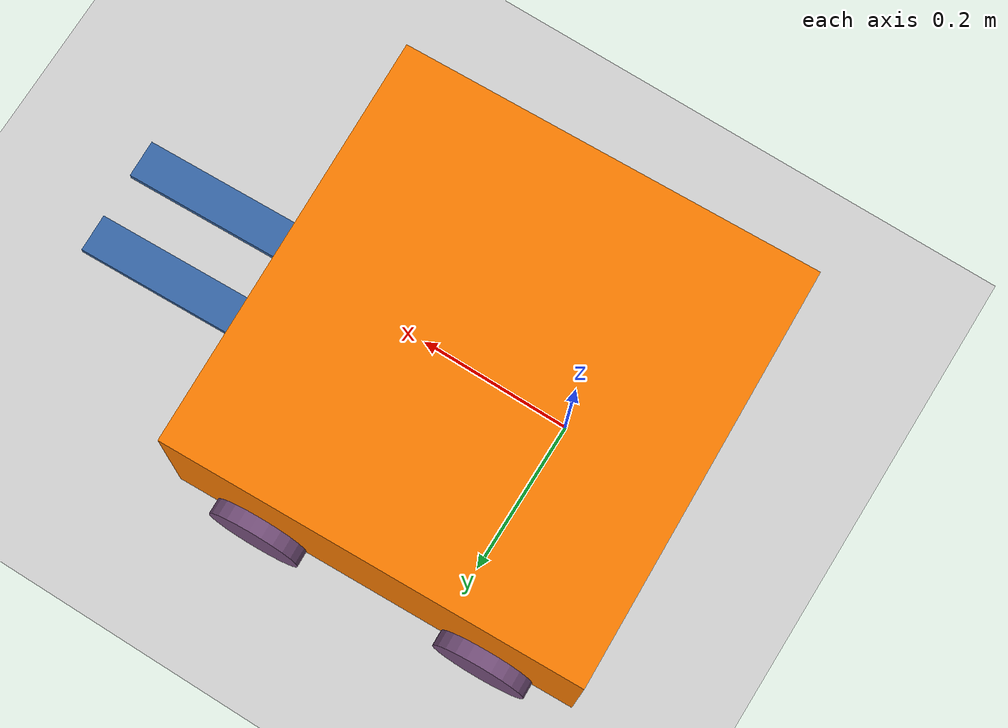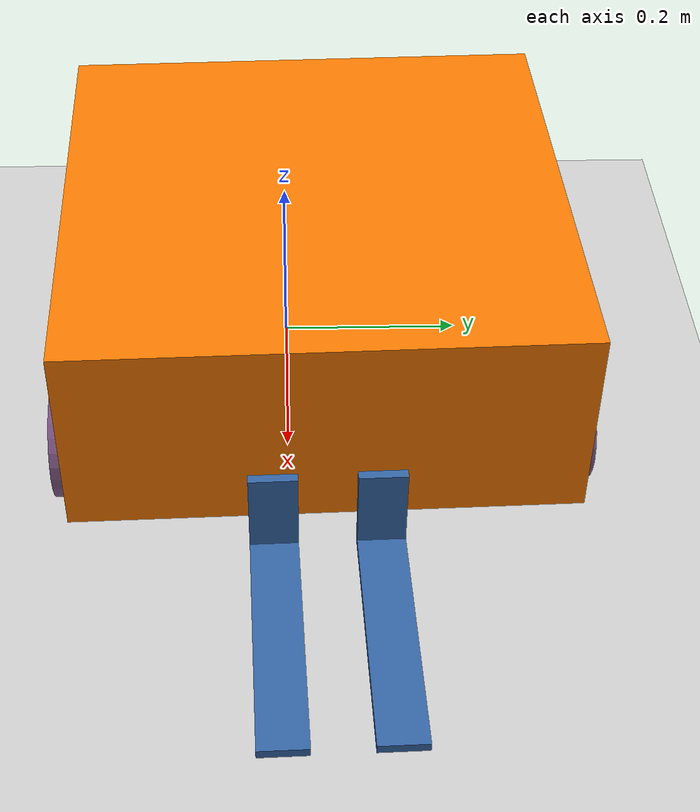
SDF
<sdf version="1.7">
 <world name="default">
  <model name="ground_plane">
   <static>1</static>
   <link name="link">
    <collision name="collision">
     <geometry><plane><normal>0 0 1</normal><size>100 100</size></plane></geometry>
     <surface>
      <contact><collide_bitmask>65535</collide_bitmask></contact>
      <friction><ode><mu>100</mu><mu2>50</mu2></ode></friction>
     </surface>
    </collision>
    <visual name="visual">
     <cast_shadows>0</cast_shadows>
     <geometry><plane><normal>0 0 1</normal><size>100 100</size></plane></geometry>
     <material>
      <script><uri>file://media/materials/scripts/gazebo.material</uri><name>Gazebo/Grey</name></script>
     </material>
    </visual>
   </link>
  </model>
  <model name="forklift_depthtest">
   <link name="camera_seg_frame">
    <pose>0.24944 0.107014 -0.322656 0 -0 0</pose>
    <inertial>
     <inertia><ixx>1</ixx><ixy>0</ixy><ixz>0</ixz><iyy>1</iyy><iyz>0</iyz><izz>1</izz></inertia>
     <mass>1</mass>
    </inertial>
   </link>
   <link name="camera_depth_frame">
    <pose>0.24944 0.107014 -0.322656 0 -0 0</pose>
    <inertial>
     <inertia><ixx>1</ixx><ixy>0</ixy><ixz>0</ixz><iyy>1</iyy><iyz>0</iyz><izz>1</izz></inertia>
     <mass>1</mass>
    </inertial>
   </link>
   <link name="camera_link">
    <pose>0.24944 0.107014 -0.322656 0 -0 0</pose>
    <sensor name="depth_camera" type="camera">
     <always_on>1</always_on>
     <visualize>0</visualize>
     <update_rate>5</update_rate>
     <camera name="camera">
      <horizontal_fov>1.02974</horizontal_fov>
      <image><width>640</width><height>480</height><format>R8G8B8</format></image>
      <clip><near>0.02</near><far>10</far></clip>
      <noise><type>gaussian</type><mean>0</mean><stddev>0.007</stddev></noise>
     </camera>
     <plugin name="depth_camera_controller" filename="libgazebo_ros_camera.so">
      <camera_name>depth_camera</camera_name>
      <frame_name>camera_depth_frame</frame_name>
      <hack_baseline>0</hack_baseline>
      <min_depth>0.001</min_depth>
     </plugin>
    </sensor>
    <inertial>
     <inertia><ixx>1</ixx><ixy>0</ixy><ixz>0</ixz><iyy>1</iyy><iyz>0</iyz><izz>1</izz></inertia>
     <mass>1</mass>
    </inertial>
    <visual name="camera_visual">
     <pose>-0.005 0 0 0 -0 0</pose>
     <geometry><box><size>0.015 0.08 0.022</size></box></geometry>
     <material>
      <ambient>0 0 0 1</ambient>
      <diffuse>0 0 0 1</diffuse>
      <specular>0 0 0 1</specular>
      <emissive>0 0 0 1</emissive>
      <shader type="pixel"><normal_map>__default__</normal_map></shader>
      <script><name>ModelPreview_3::camera_link::camera_visual_MATERIAL_</name><uri>__default__</uri></script>
     </material>
     <transparency>1</transparency>
    </visual>
   </link>
   <link name="link_0">
    <inertial>
     <mass>4</mass>
     <inertia>
      <ixx>0.107355</ixx>
      <ixy>0</ixy>
      <ixz>0</ixz>
      <iyy>0.107355</iyy>
      <iyz>0</iyz>
      <izz>0.18375</izz>
     </inertia>
    </inertial>
    <pose>-0.00556 0.107014 -0.215106 0 -0 0</pose>
    <visual name="visual">
     <geometry><box><size>0.525 0.525 0.2155</size></box></geometry>
     <material>
      <lighting>1</lighting>
      <script><uri>file://media/materials/scripts/gazebo.material</uri><name>Gazebo/Grey</name></script>
      <shader type="pixel"><normal_map>__default__</normal_map></shader>
      <ambient>0.961 0.475 0 1</ambient>
      <diffuse>0.7 0.7 0.7 1</diffuse>
      <specular>0.01 0.01 0.01 1</specular>
      <emissive>0 0 0 1</emissive>
     </material>
    </visual>
    <collision name="collision">
     <geometry><box><size>0.525 0.525 0.2155</size></box></geometry>
     <surface>
      <friction>
       <ode><mu>1</mu><mu2>1</mu2><fdir1>0 0 0</fdir1><slip1>0</slip1><slip2>0</slip2></ode>
       <torsional>
        <coefficient>1</coefficient>
        <patch_radius>0</patch_radius>
        <surface_radius>0</surface_radius>
        <use_patch_radius>1</use_patch_radius>
        <ode><slip>0</slip></ode>
       </torsional>
      </friction>
      <bounce><restitution_coefficient>0</restitution_coefficient><threshold>1e+06</threshold></bounce>
      <contact>
       <collide_without_contact>0</collide_without_contact>
       <collide_without_contact_bitmask>1</collide_without_contact_bitmask>
       <collide_bitmask>1</collide_bitmask>
       <ode>
        <soft_cfm>0</soft_cfm>
        <soft_erp>0.2</soft_erp>
        <kp>1e+13</kp>
        <kd>1</kd>
        <max_vel>0.01</max_vel>
        <min_depth>0</min_depth>
       </ode>
       <bullet>
        <split_impulse>1</split_impulse>
        <split_impulse_penetration_threshold>-0.01</split_impulse_penetration_threshold>
        <soft_cfm>0</soft_cfm>
        <soft_erp>0.2</soft_erp>
        <kp>1e+13</kp>
        <kd>1</kd>
       </bullet>
      </contact>
     </surface>
    </collision>
   </link>
   <link name="link_2">
    <inertial>
     <mass>0.1</mass>
     <inertia>
      <ixx>0.00010417</ixx>
      <ixy>0</ixy>
      <ixz>0</ixz>
      <iyy>8.417e-05</iyy>
      <iyz>0</iyz>
      <izz>2.167e-05</izz>
     </inertia>
    </inertial>
    <pose>0.261939 0.052014 -0.315356 0 -0 0</pose>
    <visual name="visual">
     <geometry><box><size>0.01 0.05 0.1</size></box></geometry>
     <material>
      <lighting>1</lighting>
      <script><uri>file://media/materials/scripts/gazebo.material</uri><name>Gazebo/Grey</name></script>
      <shader type="pixel"><normal_map>__default__</normal_map></shader>
      <ambient>0.204 0.396 0.643 1</ambient>
      <diffuse>0.7 0.7 0.7 1</diffuse>
      <specular>0.01 0.01 0.01 1</specular>
      <emissive>0 0 0 1</emissive>
     </material>
    </visual>
    <collision name="collision">
     <geometry><box><size>0.01 0.05 0.1</size></box></geometry>
     <surface>
      <friction>
       <ode><mu>1</mu><mu2>1</mu2><fdir1>0 0 0</fdir1><slip1>0</slip1><slip2>0</slip2></ode>
       <torsional>
        <coefficient>1</coefficient>
        <patch_radius>0</patch_radius>
        <surface_radius>0</surface_radius>
        <use_patch_radius>1</use_patch_radius>
        <ode><slip>0</slip></ode>
       </torsional>
      </friction>
      <bounce><restitution_coefficient>0</restitution_coefficient><threshold>1e+06</threshold></bounce>
      <contact>
       <collide_without_contact>0</collide_without_contact>
       <collide_without_contact_bitmask>1</collide_without_contact_bitmask>
       <collide_bitmask>1</collide_bitmask>
       <ode>
        <soft_cfm>0</soft_cfm>
        <soft_erp>0.2</soft_erp>
        <kp>1e+13</kp>
        <kd>1</kd>
        <max_vel>0.01</max_vel>
        <min_depth>0</min_depth>
       </ode>
       <bullet>
        <split_impulse>1</split_impulse>
        <split_impulse_penetration_threshold>-0.01</split_impulse_penetration_threshold>
        <soft_cfm>0</soft_cfm>
        <soft_erp>0.2</soft_erp>
        <kp>1e+13</kp>
        <kd>1</kd>
       </bullet>
      </contact>
     </surface>
    </collision>
   </link>
   <link name="link_2_clone">
    <inertial>
     <mass>0.1</mass>
     <inertia>
      <ixx>0.00010417</ixx>
      <ixy>0</ixy>
      <ixz>0</ixz>
      <iyy>8.417e-05</iyy>
      <iyz>0</iyz>
      <izz>2.167e-05</izz>
     </inertia>
    </inertial>
    <pose>0.261939 0.162014 -0.315356 0 -0 0</pose>
    <visual name="visual">
     <geometry><box><size>0.01 0.05 0.1</size></box></geometry>
     <material>
      <lighting>1</lighting>
      <script><uri>file://media/materials/scripts/gazebo.material</uri><name>Gazebo/Grey</name></script>
      <shader type="pixel"><normal_map>__default__</normal_map></shader>
      <ambient>0.204 0.396 0.643 1</ambient>
      <diffuse>0.7 0.7 0.7 1</diffuse>
      <specular>0.01 0.01 0.01 1</specular>
      <emissive>0 0 0 1</emissive>
     </material>
    </visual>
    <collision name="collision">
     <geometry><box><size>0.01 0.05 0.1</size></box></geometry>
     <surface>
      <friction>
       <ode><mu>1</mu><mu2>1</mu2><fdir1>0 0 0</fdir1><slip1>0</slip1><slip2>0</slip2></ode>
       <torsional>
        <coefficient>1</coefficient>
        <patch_radius>0</patch_radius>
        <surface_radius>0</surface_radius>
        <use_patch_radius>1</use_patch_radius>
        <ode><slip>0</slip></ode>
       </torsional>
      </friction>
      <bounce><restitution_coefficient>0</restitution_coefficient><threshold>1e+06</threshold></bounce>
      <contact>
       <collide_without_contact>0</collide_without_contact>
       <collide_without_contact_bitmask>1</collide_without_contact_bitmask>
       <collide_bitmask>1</collide_bitmask>
       <ode>
        <soft_cfm>0</soft_cfm>
        <soft_erp>0.2</soft_erp>
        <kp>1e+13</kp>
        <kd>1</kd>
        <max_vel>0.01</max_vel>
        <min_depth>0</min_depth>
       </ode>
       <bullet>
        <split_impulse>1</split_impulse>
        <split_impulse_penetration_threshold>-0.01</split_impulse_penetration_threshold>
        <soft_cfm>0</soft_cfm>
        <soft_erp>0.2</soft_erp>
        <kp>1e+13</kp>
        <kd>1</kd>
       </bullet>
      </contact>
     </surface>
    </collision>
   </link>
   <link name="link_3">
    <inertial>
     <mass>0.1</mass>
     <inertia>
      <ixx>2.167e-05</ixx>
      <ixy>0</ixy>
      <ixz>0</ixz>
      <iyy>0.00052167</iyy>
      <iyz>0</iyz>
      <izz>0.00054167</izz>
     </inertia>
    </inertial>
    <pose>0.391939 0.052014 -0.360356 0 -0 0</pose>
    <visual name="visual">
     <geometry><box><size>0.25 0.05 0.01</size></box></geometry>
     <material>
      <lighting>1</lighting>
      <script><uri>file://media/materials/scripts/gazebo.material</uri><name>Gazebo/Grey</name></script>
      <shader type="pixel"><normal_map>__default__</normal_map></shader>
      <ambient>0.204 0.392 0.639 1</ambient>
      <diffuse>0.7 0.7 0.7 1</diffuse>
      <specular>0.01 0.01 0.01 1</specular>
      <emissive>0 0 0 1</emissive>
     </material>
    </visual>
    <collision name="collision">
     <geometry><box><size>0.25 0.05 0.01</size></box></geometry>
     <surface>
      <friction>
       <ode><mu>1</mu><mu2>1</mu2><fdir1>0 0 0</fdir1><slip1>0</slip1><slip2>0</slip2></ode>
       <torsional>
        <coefficient>1</coefficient>
        <patch_radius>0</patch_radius>
        <surface_radius>0</surface_radius>
        <use_patch_radius>1</use_patch_radius>
        <ode><slip>0</slip></ode>
       </torsional>
      </friction>
      <bounce><restitution_coefficient>0</restitution_coefficient><threshold>1e+06</threshold></bounce>
      <contact>
       <collide_without_contact>0</collide_without_contact>
       <collide_without_contact_bitmask>1</collide_without_contact_bitmask>
       <collide_bitmask>1</collide_bitmask>
       <ode>
        <soft_cfm>0</soft_cfm>
        <soft_erp>0.2</soft_erp>
        <kp>1e+13</kp>
        <kd>1</kd>
        <max_vel>0.01</max_vel>
        <min_depth>0</min_depth>
       </ode>
       <bullet>
        <split_impulse>1</split_impulse>
        <split_impulse_penetration_threshold>-0.01</split_impulse_penetration_threshold>
        <soft_cfm>0</soft_cfm>
        <soft_erp>0.2</soft_erp>
        <kp>1e+13</kp>
        <kd>1</kd>
       </bullet>
      </contact>
     </surface>
    </collision>
   </link>
   <link name="link_3_clone">
    <inertial>
     <mass>0.1</mass>
     <inertia>
      <ixx>2.167e-05</ixx>
      <ixy>0</ixy>
      <ixz>0</ixz>
      <iyy>0.00052167</iyy>
      <iyz>0</iyz>
      <izz>0.00054167</izz>
     </inertia>
    </inertial>
    <pose>0.391939 0.162014 -0.360356 0 -0 0</pose>
    <visual name="visual">
     <geometry><box><size>0.25 0.05 0.01</size></box></geometry>
     <material>
      <lighting>1</lighting>
      <script><uri>file://media/materials/scripts/gazebo.material</uri><name>Gazebo/Grey</name></script>
      <shader type="pixel"><normal_map>__default__</normal_map></shader>
      <ambient>0.204 0.392 0.639 1</ambient>
      <diffuse>0.7 0.7 0.7 1</diffuse>
      <specular>0.01 0.01 0.01 1</specular>
      <emissive>0 0 0 1</emissive>
     </material>
    </visual>
    <collision name="collision">
     <geometry><box><size>0.25 0.05 0.01</size></box></geometry>
     <surface>
      <friction>
       <ode><mu>1</mu><mu2>1</mu2><fdir1>0 0 0</fdir1><slip1>0</slip1><slip2>0</slip2></ode>
       <torsional>
        <coefficient>1</coefficient>
        <patch_radius>0</patch_radius>
        <surface_radius>0</surface_radius>
        <use_patch_radius>1</use_patch_radius>
        <ode><slip>0</slip></ode>
       </torsional>
      </friction>
      <bounce><restitution_coefficient>0</restitution_coefficient><threshold>1e+06</threshold></bounce>
      <contact>
       <collide_without_contact>0</collide_without_contact>
       <collide_without_contact_bitmask>1</collide_without_contact_bitmask>
       <collide_bitmask>1</collide_bitmask>
       <ode>
        <soft_cfm>0</soft_cfm>
        <soft_erp>0.2</soft_erp>
        <kp>1e+13</kp>
        <kd>1</kd>
        <max_vel>0.01</max_vel>
        <min_depth>0</min_depth>
       </ode>
       <bullet>
        <split_impulse>1</split_impulse>
        <split_impulse_penetration_threshold>-0.01</split_impulse_penetration_threshold>
        <soft_cfm>0</soft_cfm>
        <soft_erp>0.2</soft_erp>
        <kp>1e+13</kp>
        <kd>1</kd>
       </bullet>
      </contact>
     </surface>
    </collision>
   </link>
   <link name="link_4">
    <inertial>
     <mass>1</mass>
     <inertia><ixx>0.145833</ixx><ixy>0</ixy><ixz>0</ixz><iyy>0.145833</iyy><iyz>0</iyz><izz>0.125</izz></inertia>
    </inertial>
    <pose>-0.155561 -0.165499 -0.315356 1.5707 -0 0</pose>
    <visual name="visual">
     <geometry><cylinder><radius>0.06</radius><length>0.02</length></cylinder></geometry>
     <material>
      <lighting>1</lighting>
      <script><uri>file://media/materials/scripts/gazebo.material</uri><name>Gazebo/Grey</name></script>
      <shader type="pixel"><normal_map>__default__</normal_map></shader>
      <ambient>0.459 0.314 0.482 1</ambient>
      <diffuse>0.7 0.7 0.7 1</diffuse>
      <specular>0.01 0.01 0.01 1</specular>
      <emissive>0 0 0 1</emissive>
     </material>
    </visual>
    <collision name="collision">
     <geometry><cylinder><radius>0.06</radius><length>0.02</length></cylinder></geometry>
     <surface>
      <friction>
       <ode><mu>1</mu><mu2>1</mu2><fdir1>0 0 0</fdir1><slip1>0</slip1><slip2>0</slip2></ode>
       <torsional>
        <coefficient>1</coefficient>
        <patch_radius>0</patch_radius>
        <surface_radius>0</surface_radius>
        <use_patch_radius>1</use_patch_radius>
        <ode><slip>0</slip></ode>
       </torsional>
      </friction>
      <bounce><restitution_coefficient>0</restitution_coefficient><threshold>1e+06</threshold></bounce>
      <contact>
       <collide_without_contact>0</collide_without_contact>
       <collide_without_contact_bitmask>1</collide_without_contact_bitmask>
       <collide_bitmask>1</collide_bitmask>
       <ode>
        <soft_cfm>0</soft_cfm>
        <soft_erp>0.2</soft_erp>
        <kp>1e+13</kp>
        <kd>1</kd>
        <max_vel>0.01</max_vel>
        <min_depth>0</min_depth>
       </ode>
       <bullet>
        <split_impulse>1</split_impulse>
        <split_impulse_penetration_threshold>-0.01</split_impulse_penetration_threshold>
        <soft_cfm>0</soft_cfm>
        <soft_erp>0.2</soft_erp>
        <kp>1e+13</kp>
        <kd>1</kd>
       </bullet>
      </contact>
     </surface>
    </collision>
   </link>
   <link name="link_4_clone">
    <inertial>
     <mass>1</mass>
     <inertia><ixx>0.145833</ixx><ixy>0</ixy><ixz>0</ixz><iyy>0.145833</iyy><iyz>0</iyz><izz>0.125</izz></inertia>
    </inertial>
    <pose>-0.155561 0.379527 -0.315356 1.5707 -0 0</pose>
    <visual name="visual">
     <geometry><cylinder><radius>0.06</radius><length>0.02</length></cylinder></geometry>
     <material>
      <lighting>1</lighting>
      <script><uri>file://media/materials/scripts/gazebo.material</uri><name>Gazebo/Grey</name></script>
      <shader type="pixel"><normal_map>__default__</normal_map></shader>
      <ambient>0.459 0.314 0.482 1</ambient>
      <diffuse>0.7 0.7 0.7 1</diffuse>
      <specular>0.01 0.01 0.01 1</specular>
      <emissive>0 0 0 1</emissive>
     </material>
    </visual>
    <collision name="collision">
     <geometry><cylinder><radius>0.06</radius><length>0.02</length></cylinder></geometry>
     <surface>
      <friction>
       <ode><mu>1</mu><mu2>1</mu2><fdir1>0 0 0</fdir1><slip1>0</slip1><slip2>0</slip2></ode>
       <torsional>
        <coefficient>1</coefficient>
        <patch_radius>0</patch_radius>
        <surface_radius>0</surface_radius>
        <use_patch_radius>1</use_patch_radius>
        <ode><slip>0</slip></ode>
       </torsional>
      </friction>
      <bounce><restitution_coefficient>0</restitution_coefficient><threshold>1e+06</threshold></bounce>
      <contact>
       <collide_without_contact>0</collide_without_contact>
       <collide_without_contact_bitmask>1</collide_without_contact_bitmask>
       <collide_bitmask>1</collide_bitmask>
       <ode>
        <soft_cfm>0</soft_cfm>
        <soft_erp>0.2</soft_erp>
        <kp>1e+13</kp>
        <kd>1</kd>
        <max_vel>0.01</max_vel>
        <min_depth>0</min_depth>
       </ode>
       <bullet>
        <split_impulse>1</split_impulse>
        <split_impulse_penetration_threshold>-0.01</split_impulse_penetration_threshold>
        <soft_cfm>0</soft_cfm>
        <soft_erp>0.2</soft_erp>
        <kp>1e+13</kp>
        <kd>1</kd>
       </bullet>
      </contact>
     </surface>
    </collision>
   </link>
   <link name="link_4_clone_0">
    <inertial>
     <mass>1</mass>
     <inertia><ixx>0.145833</ixx><ixy>0</ixy><ixz>0</ixz><iyy>0.145833</iyy><iyz>0</iyz><izz>0.125</izz></inertia>
    </inertial>
    <pose>0.14444 -0.165499 -0.315356 1.5707 -0 0</pose>
    <visual name="visual">
     <geometry><cylinder><radius>0.06</radius><length>0.02</length></cylinder></geometry>
     <material>
      <lighting>1</lighting>
      <script><uri>file://media/materials/scripts/gazebo.material</uri><name>Gazebo/Grey</name></script>
      <shader type="pixel"><normal_map>__default__</normal_map></shader>
      <ambient>0.459 0.314 0.482 1</ambient>
      <diffuse>0.7 0.7 0.7 1</diffuse>
      <specular>0.01 0.01 0.01 1</specular>
      <emissive>0 0 0 1</emissive>
     </material>
    </visual>
    <collision name="collision">
     <geometry><cylinder><radius>0.06</radius><length>0.02</length></cylinder></geometry>
     <surface>
      <friction>
       <ode><mu>1</mu><mu2>1</mu2><fdir1>0 0 0</fdir1><slip1>0</slip1><slip2>0</slip2></ode>
       <torsional>
        <coefficient>1</coefficient>
        <patch_radius>0</patch_radius>
        <surface_radius>0</surface_radius>
        <use_patch_radius>1</use_patch_radius>
        <ode><slip>0</slip></ode>
       </torsional>
      </friction>
      <bounce><restitution_coefficient>0</restitution_coefficient><threshold>1e+06</threshold></bounce>
      <contact>
       <collide_without_contact>0</collide_without_contact>
       <collide_without_contact_bitmask>1</collide_without_contact_bitmask>
       <collide_bitmask>1</collide_bitmask>
       <ode>
        <soft_cfm>0</soft_cfm>
        <soft_erp>0.2</soft_erp>
        <kp>1e+13</kp>
        <kd>1</kd>
        <max_vel>0.01</max_vel>
        <min_depth>0</min_depth>
       </ode>
       <bullet>
        <split_impulse>1</split_impulse>
        <split_impulse_penetration_threshold>-0.01</split_impulse_penetration_threshold>
        <soft_cfm>0</soft_cfm>
        <soft_erp>0.2</soft_erp>
        <kp>1e+13</kp>
        <kd>1</kd>
       </bullet>
      </contact>
     </surface>
    </collision>
   </link>
   <link name="link_4_clone_1">
    <inertial>
     <mass>1</mass>
     <inertia><ixx>0.145833</ixx><ixy>0</ixy><ixz>0</ixz><iyy>0.145833</iyy><iyz>0</iyz><izz>0.125</izz></inertia>
    </inertial>
    <pose>0.14444 0.379527 -0.315356 1.5707 -0 0</pose>
    <visual name="visual">
     <geometry><cylinder><radius>0.06</radius><length>0.02</length></cylinder></geometry>
     <material>
      <lighting>1</lighting>
      <script><uri>file://media/materials/scripts/gazebo.material</uri><name>Gazebo/Grey</name></script>
      <shader type="pixel"><normal_map>__default__</normal_map></shader>
      <ambient>0.459 0.314 0.482 1</ambient>
      <diffuse>0.7 0.7 0.7 1</diffuse>
      <specular>0.01 0.01 0.01 1</specular>
      <emissive>0 0 0 1</emissive>
     </material>
    </visual>
    <collision name="collision">
     <geometry><cylinder><radius>0.06</radius><length>0.02</length></cylinder></geometry>
     <surface>
      <friction>
       <ode><mu>1</mu><mu2>1</mu2><fdir1>0 0 0</fdir1><slip1>0</slip1><slip2>0</slip2></ode>
       <torsional>
        <coefficient>1</coefficient>
        <patch_radius>0</patch_radius>
        <surface_radius>0</surface_radius>
        <use_patch_radius>1</use_patch_radius>
        <ode><slip>0</slip></ode>
       </torsional>
      </friction>
      <bounce><restitution_coefficient>0</restitution_coefficient><threshold>1e+06</threshold></bounce>
      <contact>
       <collide_without_contact>0</collide_without_contact>
       <collide_without_contact_bitmask>1</collide_without_contact_bitmask>
       <collide_bitmask>1</collide_bitmask>
       <ode>
        <soft_cfm>0</soft_cfm>
        <soft_erp>0.2</soft_erp>
        <kp>1e+13</kp>
        <kd>1</kd>
        <max_vel>0.01</max_vel>
        <min_depth>0</min_depth>
       </ode>
       <bullet>
        <split_impulse>1</split_impulse>
        <split_impulse_penetration_threshold>-0.01</split_impulse_penetration_threshold>
        <soft_cfm>0</soft_cfm>
        <soft_erp>0.2</soft_erp>
        <kp>1e+13</kp>
        <kd>1</kd>
       </bullet>
      </contact>
     </surface>
    </collision>
   </link>
   <link name="segcamera_link">
    <pose>0.24944 0.107014 -0.322656 0 -0 0</pose>
    <sensor name="segmentation_camera" type="segmentation">
     <topic>segmentation</topic>
     <camera>
      <horizontal_fov>1.047</horizontal_fov>
      <image><width>800</width><height>600</height></image>
      <clip><near>0.1</near><far>10</far></clip>
      <segmentation_type>semantic</segmentation_type>
     </camera>
     <always_on>1</always_on>
     <update_rate>30</update_rate>
     <visualize>1</visualize>
    </sensor>
    <inertial>
     <inertia><ixx>1</ixx><ixy>0</ixy><ixz>0</ixz><iyy>1</iyy><iyz>0</iyz><izz>1</izz></inertia>
     <mass>1</mass>
    </inertial>
    <visual name="segcamera_visual">
     <pose>-0.005 0 0 0 -0 0</pose>
     <geometry><box><size>0.015 0.08 0.022</size></box></geometry>
     <material>
      <ambient>0 0 0 1</ambient>
      <diffuse>0 0 0 1</diffuse>
      <specular>0 0 0 1</specular>
      <emissive>0 0 0 1</emissive>
      <shader type="pixel"><normal_map>__default__</normal_map></shader>
      <script><name>ModelPreview_5::segcamera_link::segcamera_visual_MATERIAL_</name><uri>__default__</uri></script>
     </material>
     <transparency>1</transparency>
    </visual>
   </link>
   <joint name="camera_depth_frame_JOINT_1" type="fixed">
    <parent>camera_depth_frame</parent>
    <child>camera_seg_frame</child>
    <physics>
     <ode><limit><cfm>0</cfm><erp>0.2</erp></limit><suspension><cfm>0</cfm><erp>0.2</erp></suspension></ode>
    </physics>
   </joint>
   <joint name="camera_link_JOINT_0" type="fixed">
    <parent>camera_link</parent>
    <child>segcamera_link</child>
    <physics>
     <ode><limit><cfm>0</cfm><erp>0.2</erp></limit><suspension><cfm>0</cfm><erp>0.2</erp></suspension></ode>
    </physics>
   </joint>
   <joint name="camera_link_JOINT_1" type="fixed">
    <parent>camera_link</parent>
    <child>camera_depth_frame</child>
    <physics>
     <ode><limit><cfm>0</cfm><erp>0.2</erp></limit><suspension><cfm>0</cfm><erp>0.2</erp></suspension></ode>
    </physics>
   </joint>
   <joint name="link_0_JOINT_0" type="fixed">
    <parent>link_0</parent>
    <child>camera_link</child>
    <physics>
     <ode><limit><cfm>0</cfm><erp>0.2</erp></limit><suspension><cfm>0</cfm><erp>0.2</erp></suspension></ode>
    </physics>
   </joint>
   <joint name="link_0_JOINT_13" type="revolute">
    <parent>link_0</parent>
    <child>link_4</child>
    <axis>
     <xyz>-0 -0 -1</xyz>
     <limit>
      <lower>-1.79769e+308</lower>
      <upper>1.79769e+308</upper>
      <effort>-1</effort>
      <velocity>-1</velocity>
     </limit>
     <dynamics>
      <spring_reference>0</spring_reference>
      <spring_stiffness>0</spring_stiffness>
      <damping>0</damping>
      <friction>0</friction>
     </dynamics>
    </axis>
    <physics>
     <ode><limit><cfm>0</cfm><erp>0.2</erp></limit><suspension><cfm>0</cfm><erp>0.2</erp></suspension></ode>
    </physics>
   </joint>
   <joint name="link_0_JOINT_14" type="revolute">
    <parent>link_0</parent>
    <child>link_4_clone</child>
    <axis>
     <xyz>0 0 1</xyz>
     <limit>
      <lower>-1.79769e+308</lower>
      <upper>1.79769e+308</upper>
      <effort>-1</effort>
      <velocity>-1</velocity>
     </limit>
     <dynamics>
      <spring_reference>0</spring_reference>
      <spring_stiffness>0</spring_stiffness>
      <damping>0</damping>
      <friction>0</friction>
     </dynamics>
    </axis>
    <physics>
     <ode><limit><cfm>0</cfm><erp>0.2</erp></limit><suspension><cfm>0</cfm><erp>0.2</erp></suspension></ode>
    </physics>
   </joint>
   <joint name="link_0_JOINT_15" type="revolute2">
    <parent>link_0</parent>
    <child>link_4_clone_0</child>
    <axis>
     <xyz>-0 -0 -1</xyz>
     <limit>
      <lower>-1.79769e+308</lower>
      <upper>1.79769e+308</upper>
      <effort>-1</effort>
      <velocity>-1</velocity>
     </limit>
     <dynamics>
      <spring_reference>0</spring_reference>
      <spring_stiffness>0</spring_stiffness>
      <damping>0</damping>
      <friction>0</friction>
     </dynamics>
    </axis>
    <axis2>
     <xyz>0 1 0</xyz>
     <limit>
      <lower>-1.79769e+308</lower>
      <upper>1.79769e+308</upper>
      <effort>-1</effort>
      <velocity>-1</velocity>
     </limit>
     <dynamics>
      <spring_reference>0</spring_reference>
      <spring_stiffness>0</spring_stiffness>
      <damping>0</damping>
      <friction>0</friction>
     </dynamics>
    </axis2>
    <physics>
     <ode><limit><cfm>0</cfm><erp>0.2</erp></limit><suspension><cfm>0</cfm><erp>0.2</erp></suspension></ode>
    </physics>
   </joint>
   <joint name="link_0_JOINT_16" type="revolute2">
    <parent>link_0</parent>
    <child>link_4_clone_1</child>
    <axis>
     <xyz>0 0 1</xyz>
     <limit>
      <lower>-1.79769e+308</lower>
      <upper>1.79769e+308</upper>
      <effort>-1</effort>
      <velocity>-1</velocity>
     </limit>
     <dynamics>
      <spring_reference>0</spring_reference>
      <spring_stiffness>0</spring_stiffness>
      <damping>0</damping>
      <friction>0</friction>
     </dynamics>
    </axis>
    <axis2>
     <xyz>0 1 0</xyz>
     <limit>
      <lower>-1.79769e+308</lower>
      <upper>1.79769e+308</upper>
      <effort>-1</effort>
      <velocity>-1</velocity>
     </limit>
     <dynamics>
      <spring_reference>0</spring_reference>
      <spring_stiffness>0</spring_stiffness>
      <damping>0</damping>
      <friction>0</friction>
     </dynamics>
    </axis2>
    <physics>
     <ode><limit><cfm>0</cfm><erp>0.2</erp></limit><suspension><cfm>0</cfm><erp>0.2</erp></suspension></ode>
    </physics>
   </joint>
   <joint name="link_0_JOINT_5" type="fixed">
    <parent>link_0</parent>
    <child>link_2</child>
    <physics>
     <ode><limit><cfm>0</cfm><erp>0.2</erp></limit><suspension><cfm>0</cfm><erp>0.2</erp></suspension></ode>
    </physics>
   </joint>
   <joint name="link_0_JOINT_6" type="fixed">
    <parent>link_0</parent>
    <child>link_2_clone</child>
    <physics>
     <ode><limit><cfm>0</cfm><erp>0.2</erp></limit><suspension><cfm>0</cfm><erp>0.2</erp></suspension></ode>
    </physics>
   </joint>
   <joint name="link_2_JOINT_7" type="fixed">
    <parent>link_2</parent>
    <child>link_3</child>
    <physics>
     <ode><limit><cfm>0</cfm><erp>0.2</erp></limit><suspension><cfm>0</cfm><erp>0.2</erp></suspension></ode>
    </physics>
   </joint>
   <joint name="link_2_clone_JOINT_9" type="fixed">
    <parent>link_2_clone</parent>
    <child>link_3_clone</child>
    <physics>
     <ode><limit><cfm>0</cfm><erp>0.2</erp></limit><suspension><cfm>0</cfm><erp>0.2</erp></suspension></ode>
    </physics>
   </joint>
   <static>0</static>
   <pose>0.100506 -0.075137 0.375357 0 6e-06 0.031061</pose>
  </model>
 </world>
</sdf>
